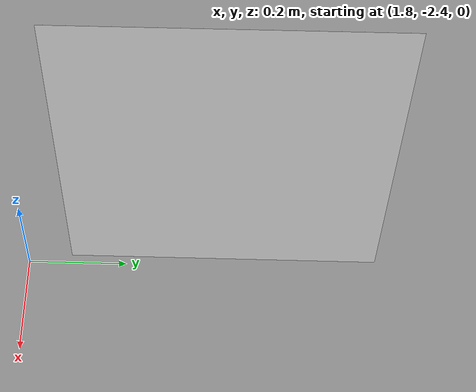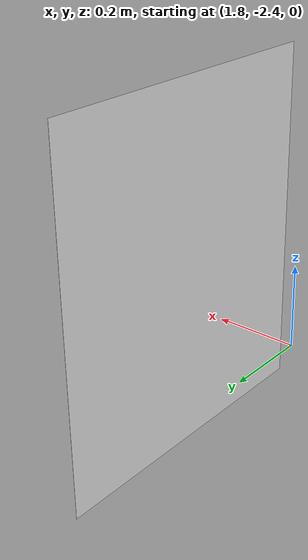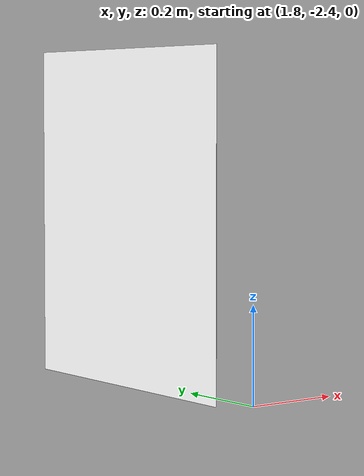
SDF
<?xml version="1.0"?>
<sdf version="1.6">
  <model name="pharmacy_board1_dynamic_20260602_141516">
    <static>true</static>
    <link name="board1_texture_link">
      <visual name="board1_texture_visual">
        <pose>1.775 -2.00 0.35 0 -1.5708 0</pose>
        <geometry>
          <plane>
            <normal>0 0 1</normal>
            <size>0.72 0.63</size>
          </plane>
        </geometry>
        <material>
          <ambient>1 1 1 1</ambient>
          <diffuse>1 1 1 1</diffuse>
          <pbr>
            <metal>
              <albedo_map>model://pharmacy_board1_dynamic/materials/textures/board1_dynamic_20260602_141516.png</albedo_map>
              <metalness>0</metalness>
              <roughness>1</roughness>
            </metal>
          </pbr>
        </material>
      </visual>
    </link>
  </model>
</sdf>
